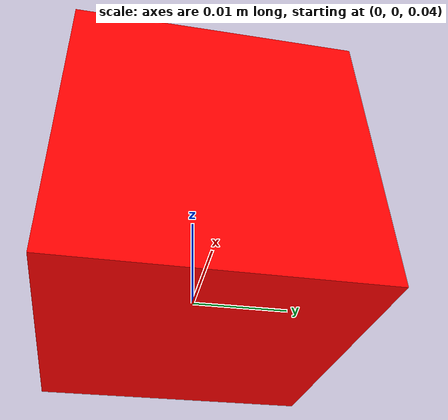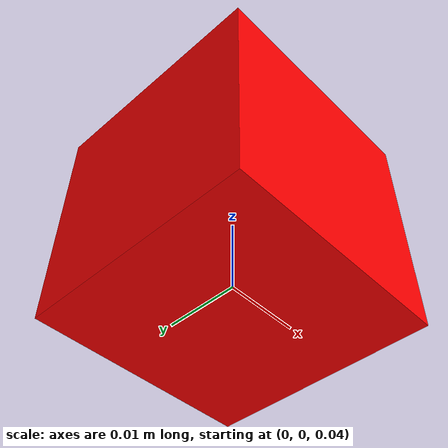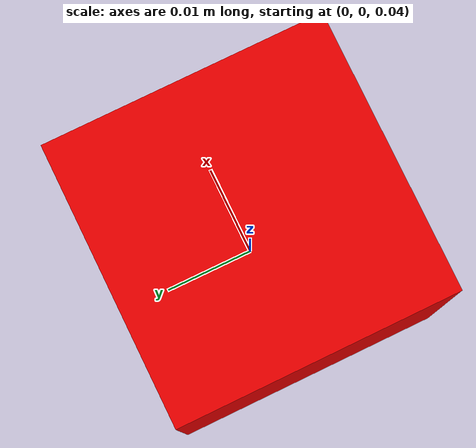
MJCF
<mujoco model="aloha_box_tranfer">
    <option integrator="implicitfast" impratio="20" noslip_iterations="5" cone="elliptic">
        <flag multiccd="enable"/>
    </option>

    <worldbody>
        <body name="box" pos="0 0 0.05">
            <joint name="red_box_joint" type="free" frictionloss="0.01" />
            <inertial pos="0 0 0" mass="0.05" diaginertia="0.002 0.002 0.002" />
            <geom condim="4" solimp="2 1 0.01" solref="0.01 1" friction="1 0.005 0.0001" pos="0 0 0" size="0.015 0.015 0.015" type="box" name="red_box" rgba="1 0 0 1" />
        </body>

    </worldbody>
</mujoco>
